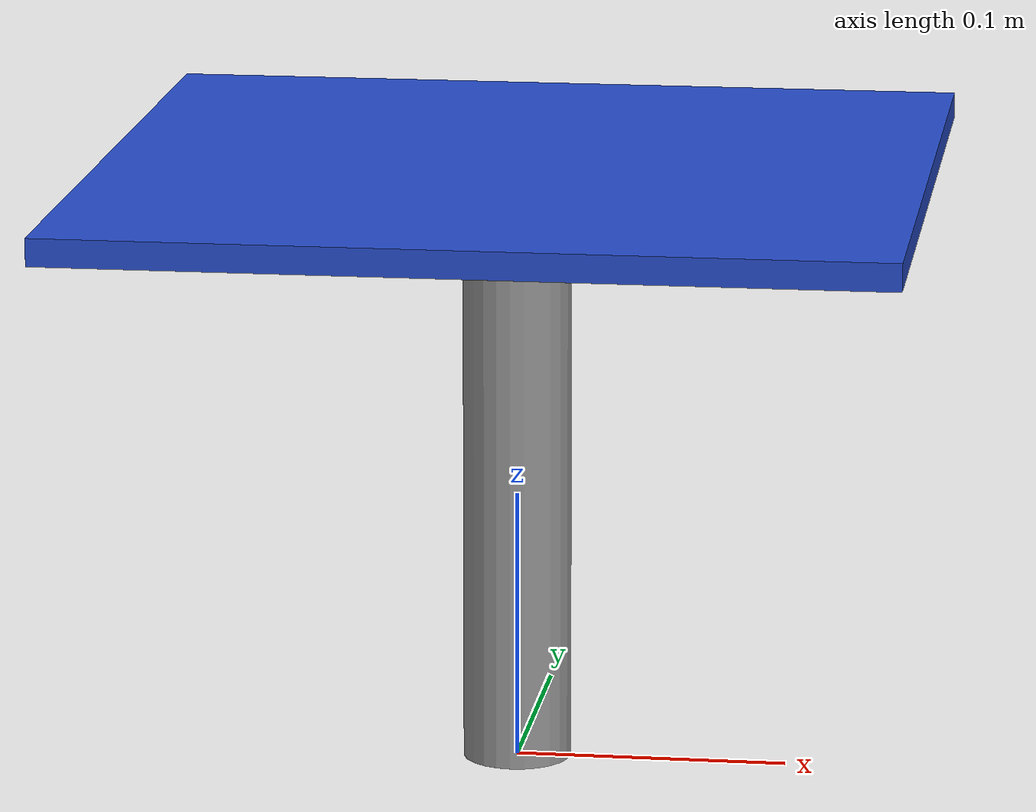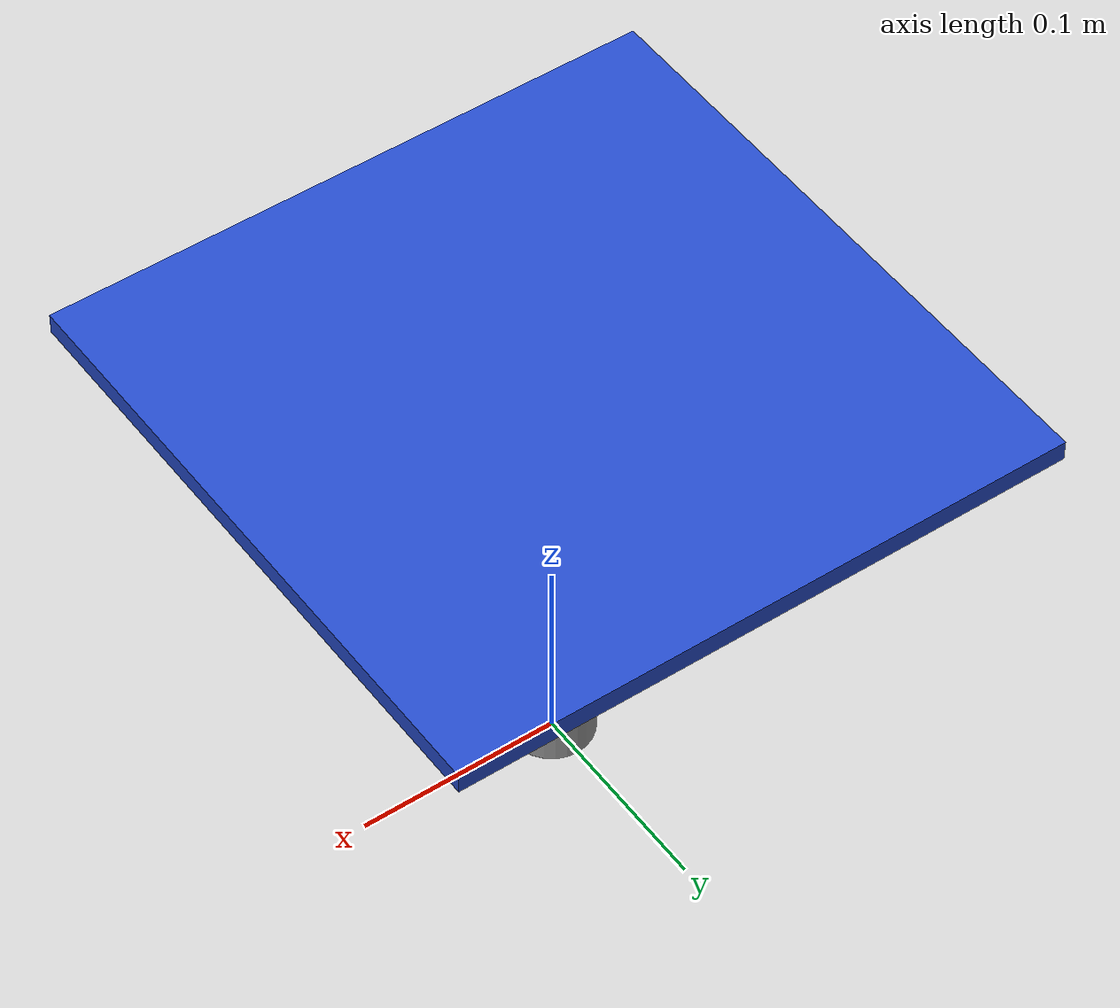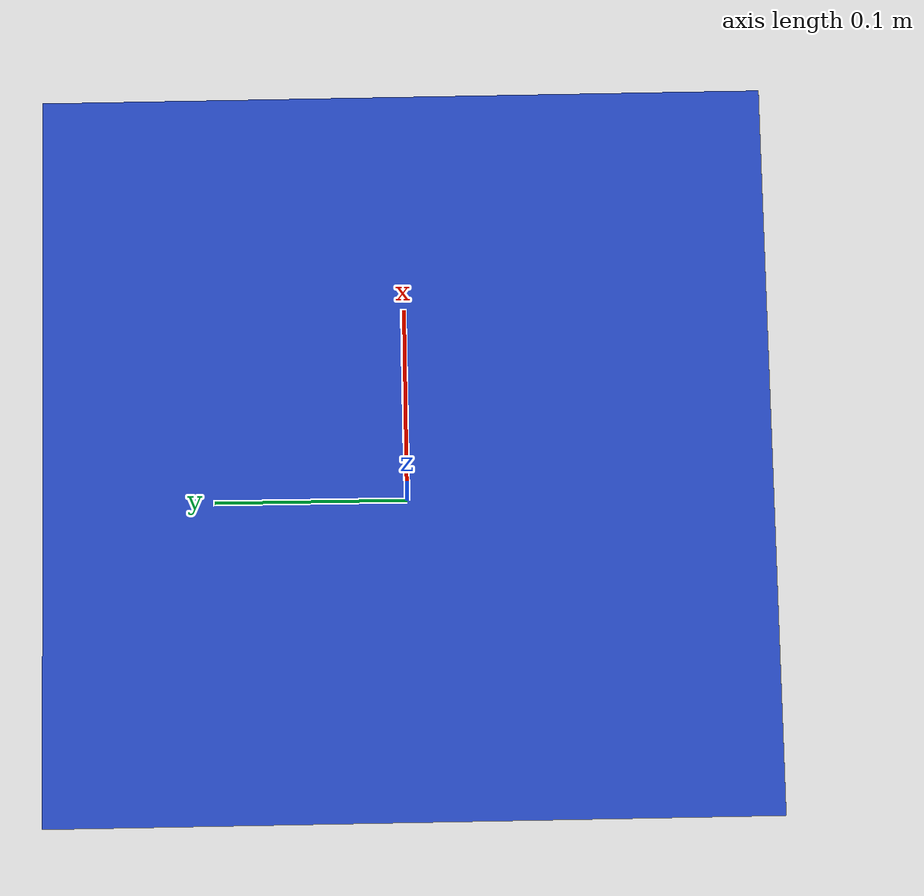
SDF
<?xml version="1.0" encoding="UTF-8"?>
<sdf version='1.9'>
  <model name='tactile_stick'>

    <link name="end_eff">
      <pose>0 0 0.1075 0 0 0</pose>
      <inertial>
        <mass>0.05</mass>
        <inertia>
          <ixx>0.001529</ixx><ixy>0</ixy><ixz>0</ixz>
          <iyy>0.001361</iyy><iyz>0</iyz><izz>0.000448</izz>
        </inertia>
      </inertial>
      <collision name="end_eff_collision">
        <geometry><cylinder><radius>0.02</radius><length>0.215</length></cylinder></geometry>
        <surface>
          <friction>
            <ode><mu>2.0</mu><mu2>2.0</mu2><slip1>0.1</slip1><slip2>0.1</slip2></ode>
          </friction>
        </surface>
      </collision>
      <visual name="end_eff_visual">
        <geometry><cylinder><radius>0.02</radius><length>0.215</length></cylinder></geometry>
        <material>
          <script>
            <uri>file://media/materials/scripts/gazebo.material</uri>
            <name>Gazebo/Grey</name>
          </script>
        </material>
        <cast_shadows>false</cast_shadows>
      </visual>
      <gravity>1</gravity>
      <velocity_decay><linear>0.2</linear><angular>0.2</angular></velocity_decay>
      <self_collide>0</self_collide>
    </link>

    <link name="end_eff_sens">
      <pose>0 0 0.22 0 0 0</pose>
      <inertial>
        <mass>0.005</mass>
        <inertia>
          <ixx>0.000001461</ixx><ixy>0</ixy><ixz>0</ixz>
          <iyy>0.000001461</iyy><iyz>0</iyz><izz>0.000001461</izz>
        </inertia>
      </inertial>
      <collision name="end_eff_sens_collision">
        <geometry><box><size>0.3 0.3 0.01</size></box></geometry>
        <surface>
          <friction>
            <ode><mu>0.6</mu><mu2>0.6</mu2><slip1>0.0</slip1><slip2>0.0</slip2></ode>
          </friction>
          <contact>
            <ode>
              <kp>1000000</kp><kd>10000</kd><max_vel>0.02</max_vel>
              <min_depth>0.0005</min_depth><soft_cfm>0</soft_cfm><soft_erp>0</soft_erp>
            </ode>
          </contact>
          <bounce><restitution_coefficient>0</restitution_coefficient><threshold>1000</threshold></bounce>
        </surface>
      </collision>
      <visual name="end_eff_sens_visual">
        <geometry><box><size>0.3 0.3 0.01</size></box></geometry>
        <material>
          <script>
            <uri>file://media/materials/scripts/gazebo.material</uri>
            <name>Gazebo/Blue</name>
          </script>
        </material>
        <cast_shadows>false</cast_shadows>
      </visual>
      <gravity>1</gravity>
      <velocity_decay><linear>0.2</linear><angular>0.2</angular></velocity_decay>
      <self_collide>0</self_collide>
      <sensor name="contact_tl" type="contact">
        <always_on>1</always_on>
        <visualize>1</visualize>
        <update_rate>100</update_rate>
        <contact><collision>end_eff_sens_collision</collision></contact>
      </sensor>
    </link>

    <joint name="end_eff_sens_joint" type="fixed">
      <parent>end_eff</parent>
      <child>end_eff_sens</child>
      <sensor type="force_torque" name="force_torque_sensor">
        <update_rate>100</update_rate>
        <always_on>true</always_on>
        <visualize>true</visualize>
        <topic>force_torque</topic>
        <plugin filename="gz-sim-forcetorque-system" name="gz::sim::systems::ForceTorque">
          <force_x_noise_mean>0</force_x_noise_mean><force_x_noise_stddev>0.005</force_x_noise_stddev>
          <force_y_noise_mean>0</force_y_noise_mean><force_y_noise_stddev>0.005</force_y_noise_stddev>
          <force_z_noise_mean>0</force_z_noise_mean><force_z_noise_stddev>0.005</force_z_noise_stddev>
          <torque_x_noise_mean>0</torque_x_noise_mean><torque_x_noise_stddev>0.0005</torque_x_noise_stddev>
          <torque_y_noise_mean>0</torque_y_noise_mean><torque_y_noise_stddev>0.0005</torque_y_noise_stddev>
          <torque_z_noise_mean>0</torque_z_noise_mean><torque_z_noise_stddev>0.0005</torque_z_noise_stddev>
        </plugin>
      </sensor>
    </joint>
  </model>
</sdf>
